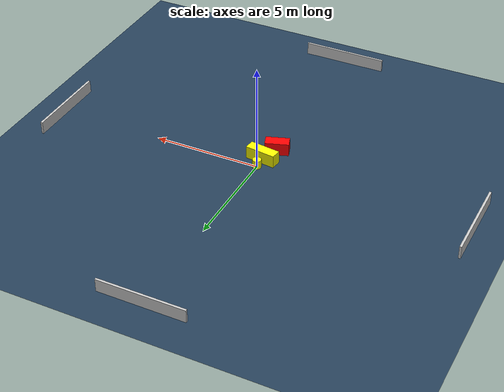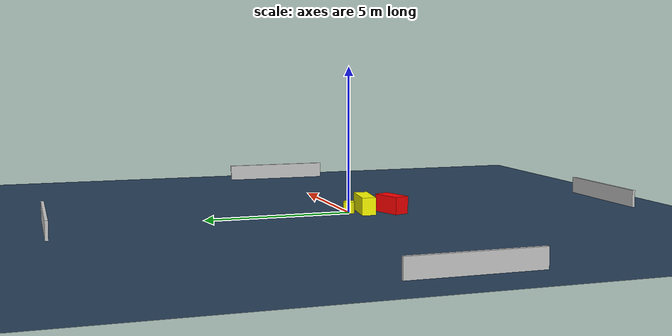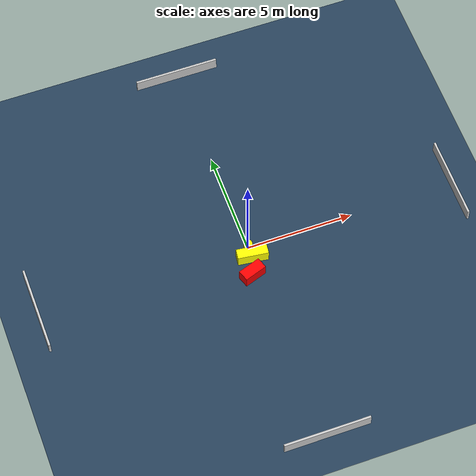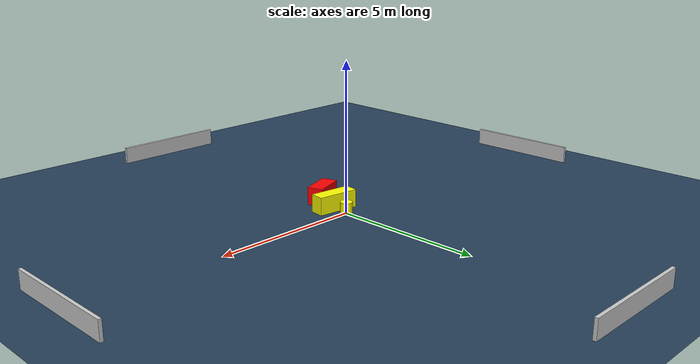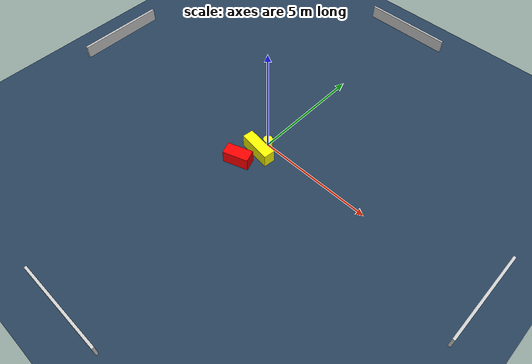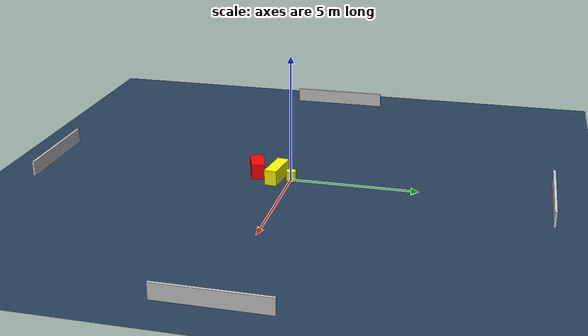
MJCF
<?xml version="1.0" ?>
<mujoco model="generated_environment">
  <option timestep="0.01" integrator="RK4" cone="elliptic"/>
  <default>
    <geom density="1"/>
  </default>
  <asset>
    <texture builtin="gradient" height="3072" name="skybox" rgb1="0.3 0.5 0.7" rgb2="0 0 0" type="skybox" width="512"/>
    <texture builtin="checker" height="300" name="groundplane" rgb1="0.2 0.3 0.4" rgb2="0.1 0.2 0.3" type="2d" width="300"/>
    <material name="groundplane" reflectance="0.2" texrepeat="5 5" texture="groundplane"/>
  </asset>
  <worldbody>
    <light dir="0 0 -1" directional="true" pos="0 0 1.5"/>
    <geom condim="3" friction="0.5 0.005 0.001" material="groundplane" name="floor" pos="0 0 0" size="0 0 0.05" type="plane"/>
    <body name="walls">
      <geom name="wall_1" condim="4" pos="-10.0 0.0 0.3" rgba="0.800000011920929 0.800000011920929 0.800000011920929 1.0" size="0.05 2.0 0.3" type="box"/>
      <geom name="wall_2" condim="4" pos="10.0 0.0 0.3" rgba="0.800000011920929 0.800000011920929 0.800000011920929 1.0" size="0.05 2.0 0.3" type="box"/>
      <geom name="wall_3" condim="4" pos="0.0 -10.0 0.3" rgba="0.800000011920929 0.800000011920929 0.800000011920929 1.0" size="2.0 0.05 0.3" type="box"/>
      <geom name="wall_4" condim="4" pos="0.0 10.0 0.3" rgba="0.800000011920929 0.800000011920929 0.800000011920929 1.0" size="2.0 0.05 0.3" type="box"/>
    </body>
    <body name="robot">
      <joint name="joint_x" type="slide" pos="0 0 0" axis="1 0 0"/>
      <joint name="joint_y" type="slide" pos="0 0 0" axis="0 1 0"/>
      <geom name="robot" type="cylinder" pos="0.0 0.0 0.2" size="0.2 0.2 0.0" mass="5.0" friction="1.0 0.005 0.0001" condim="4" rgba="1.0 1.0 0.0 1.0"/>
    </body>
    <body name="obstacle_1_movable">
      <geom name="obstacle_1_movable" condim="4" pos="-0.00013093160167258007 -0.5674514639897885 0.3" euler="0 0 172.7191779695191" friction="0.0 0.005 0.001" rgba="1.0 1.0 0.0 1.0" size="0.713114292151416 0.24084974337585385 0.3" type="box" mass="0.1"/>
      <joint type="free"/>
    </body>
    <body name="obstacle_2_static">
      <geom name="obstacle_2_static" condim="4" pos="-0.30979576181416735 -1.4408847733288979 0.3" euler="0 0 108.91501334390216" friction="0.0 0.005 0.001" rgba="1.0 0.0 0.0 1.0" size="0.26735501797421257 0.54899498297996 0.3" type="box"/>
    </body>
  </worldbody>
  <actuator>
    <motor name="actuator_x" joint="joint_x" gear="1" ctrlrange="-1 1"/>
    <motor name="actuator_y" joint="joint_y" gear="1" ctrlrange="-1 1"/>
  </actuator>
</mujoco>
